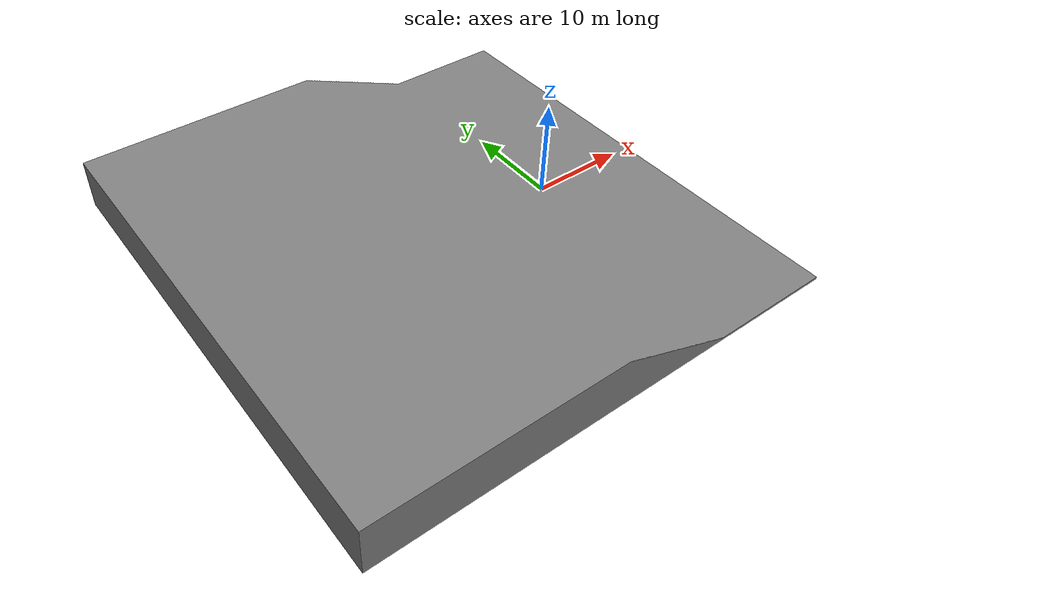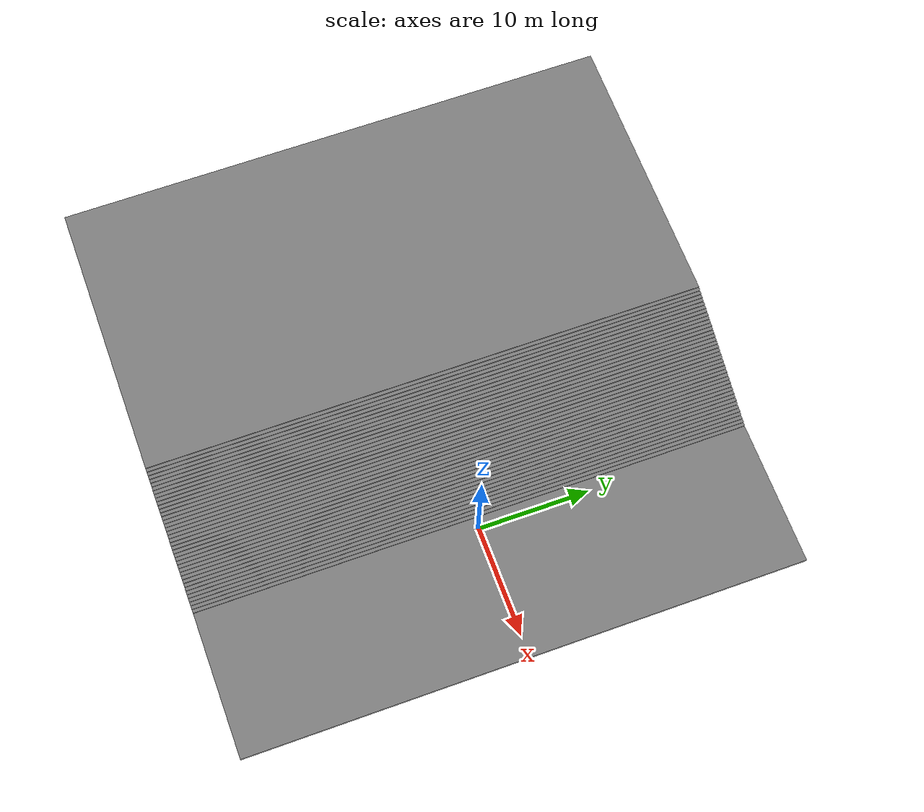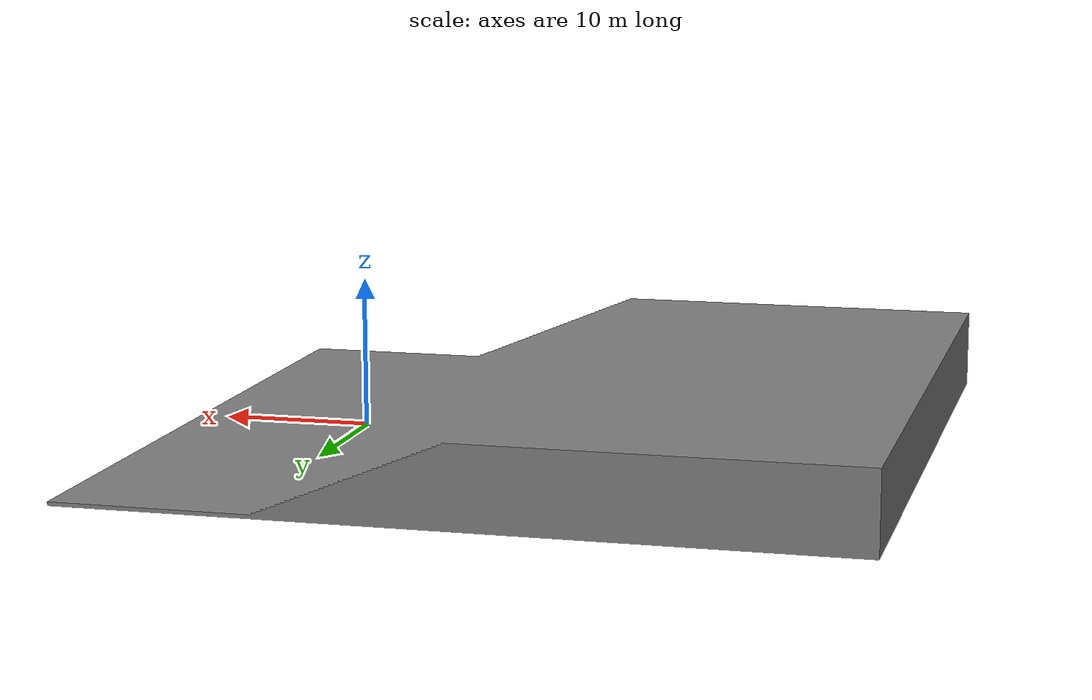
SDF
<?xml version="1.0" ?>
<sdf version="1.6">
  <model name="Stairs">
    <link name="link">
      <inertial>
        <pose>0 0 0.0 0 0 0</pose>
        <mass>1000</mass>
        <inertia>
          <ixx>0.00019820251</ixx>
          <ixy>0</ixy>
          <ixz>0</ixz>
          <iyy>0.00019820251</iyy>
          <iyz>0</iyz>
          <izz>0.00038440503</izz>
        </inertia>
      </inertial>

      <collision name="collision">
        <pose>0 0 0.0 0 0 0</pose>
         <geometry>
           <mesh>
             <uri>model://stairs/meshes/stairs.stl</uri>
             <scale>1 1 0.5 </scale>
           </mesh>
         </geometry>
        <surface>
          <contact>
            <ode>
              <max_vel>0.1</max_vel>
              <min_depth>0.001</min_depth>
            </ode>
          </contact>
          <friction>
            <ode>
              <mu>100</mu>
              <mu2>100</mu2>
            </ode>
          </friction>
        </surface>
      </collision>

      <visual name="visual">
         <geometry>
           <mesh>
             <uri>model://stairs/meshes/stairs.stl</uri>
             <scale>1 1 0.5 </scale>
           </mesh>
         </geometry>
         <material>
          <ambient>0.5 0.5 0.5 1</ambient>
          <diffuse>0.5 0.5 0.5 1</diffuse>
          <specular>0 0 0 0</specular>
          <emissive>0 0 0 1</emissive>
        </material>
       </visual>
    </link>
  </model>
</sdf>
